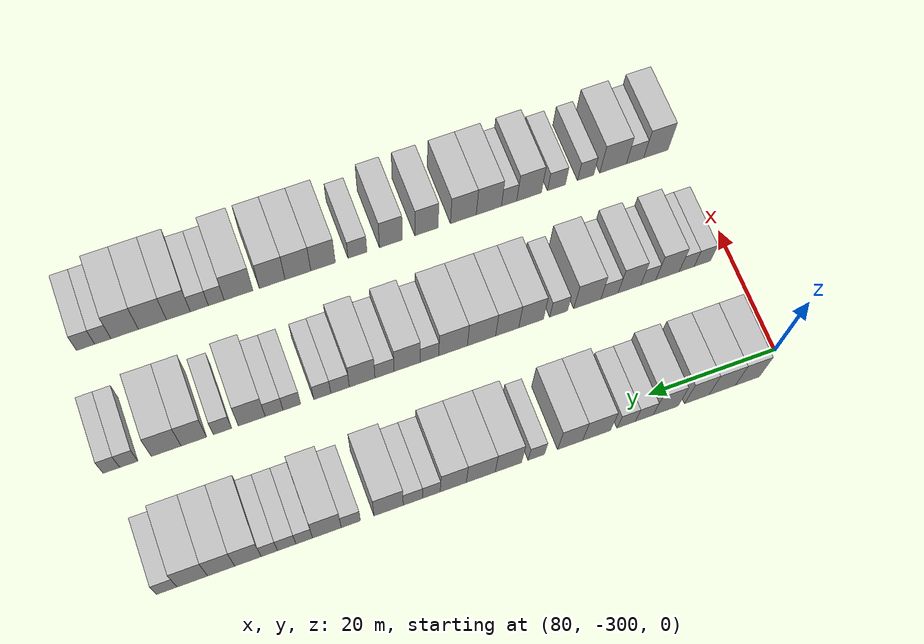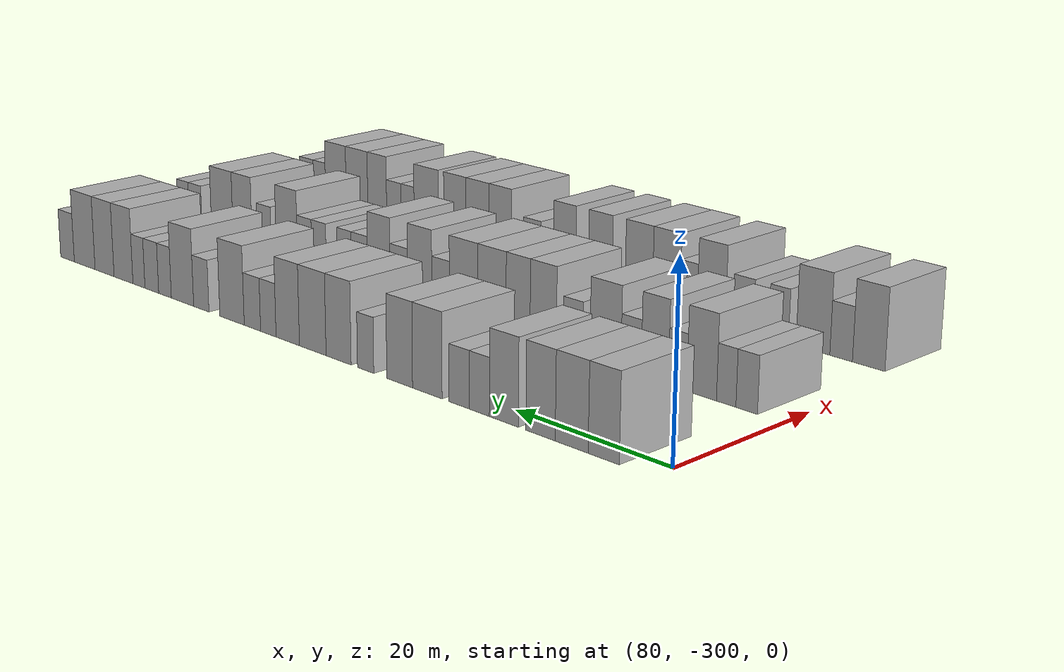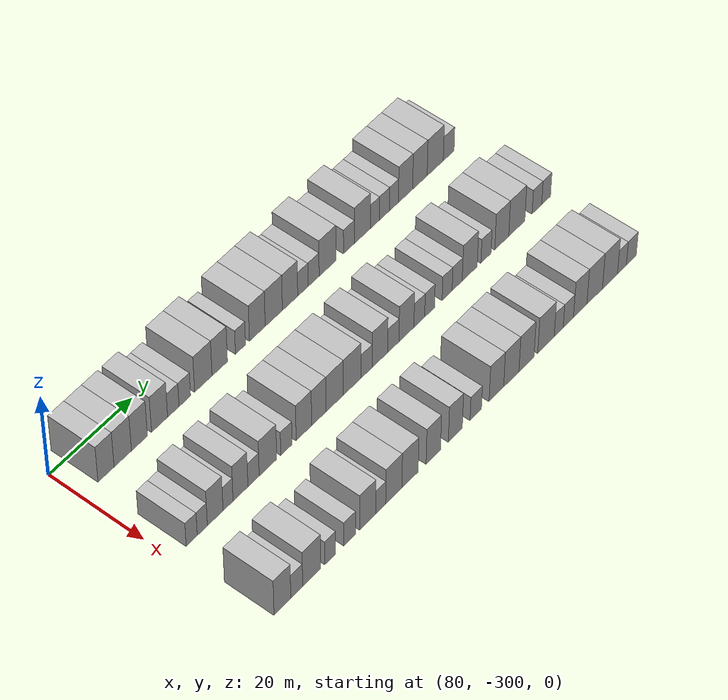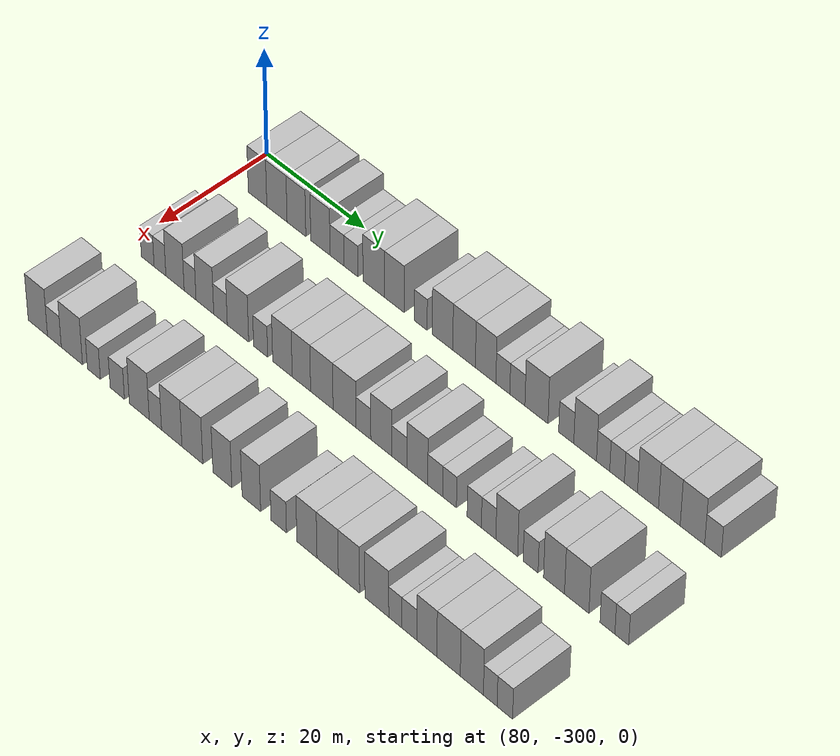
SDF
<sdf version="1.6">
 <world name="default">
  <model name="building_510">
   <static>1</static>
   <pose>82.0000 -294.2352 0 0.000000 0.000000 0.000000</pose>
   <link name="link">
    <pose>0 0 4.50 0 0 0</pose>
    <collision name="collision"><geometry><box><size>10.0000 3.8340 9.0000</size></box></geometry></collision>
    <visual name="visual">
     <cast_shadows>0</cast_shadows>
     <geometry><box><size>10.0000 3.8340 9.0000</size></box></geometry>
     <material>
      <script>
       <uri>model://HANNAS_wall/materials/scripts</uri>
       <uri>model://HANNAS_wall/materials/textures</uri>
       <name>vrc/HANNAS_wall</name>
      </script>
     </material>
    </visual>
   </link>
  </model>
  <model name="building_511">
   <static>1</static>
   <pose>82.0000 -290.2316 0 0.000000 0.000000 0.000000</pose>
   <link name="link">
    <pose>0 0 4.50 0 0 0</pose>
    <collision name="collision"><geometry><box><size>10.0000 4.1733 9.0000</size></box></geometry></collision>
    <visual name="visual">
     <cast_shadows>0</cast_shadows>
     <geometry><box><size>10.0000 4.1733 9.0000</size></box></geometry>
     <material>
      <script>
       <uri>model://HANNAS_wall/materials/scripts</uri>
       <uri>model://HANNAS_wall/materials/textures</uri>
       <name>vrc/HANNAS_wall</name>
      </script>
     </material>
    </visual>
   </link>
  </model>
  <model name="building_512">
   <static>1</static>
   <pose>82.0000 -286.2272 0 0.000000 0.000000 0.000000</pose>
   <link name="link">
    <pose>0 0 4.50 0 0 0</pose>
    <collision name="collision"><geometry><box><size>10.0000 3.8354 9.0000</size></box></geometry></collision>
    <visual name="visual">
     <cast_shadows>0</cast_shadows>
     <geometry><box><size>10.0000 3.8354 9.0000</size></box></geometry>
     <material>
      <script>
       <uri>model://HANNAS_wall/materials/scripts</uri>
       <uri>model://HANNAS_wall/materials/textures</uri>
       <name>vrc/HANNAS_wall</name>
      </script>
     </material>
    </visual>
   </link>
  </model>
  <model name="building_513">
   <static>1</static>
   <pose>82.0000 -281.3479 0 0.000000 0.000000 0.000000</pose>
   <link name="link">
    <pose>0 0 4.50 0 0 0</pose>
    <collision name="collision"><geometry><box><size>10.0000 3.9232 9.0000</size></box></geometry></collision>
    <visual name="visual">
     <cast_shadows>0</cast_shadows>
     <geometry><box><size>10.0000 3.9232 9.0000</size></box></geometry>
     <material>
      <script>
       <uri>model://HANNAS_wall/materials/scripts</uri>
       <uri>model://HANNAS_wall/materials/textures</uri>
       <name>vrc/HANNAS_wall</name>
      </script>
     </material>
    </visual>
   </link>
  </model>
  <model name="building_514">
   <static>1</static>
   <pose>82.0000 -277.9864 0 0.000000 0.000000 0.000000</pose>
   <link name="link">
    <pose>0 0 3.00 0 0 0</pose>
    <collision name="collision"><geometry><box><size>10.0000 2.7998 6.0000</size></box></geometry></collision>
    <visual name="visual">
     <cast_shadows>0</cast_shadows>
     <geometry><box><size>10.0000 2.7998 6.0000</size></box></geometry>
     <material>
      <script>
       <uri>model://HANNAS_wall/materials/scripts</uri>
       <uri>model://HANNAS_wall/materials/textures</uri>
       <name>vrc/HANNAS_wall</name>
      </script>
     </material>
    </visual>
   </link>
  </model>
  <model name="building_515">
   <static>1</static>
   <pose>82.0000 -275.1709 0 0.000000 0.000000 0.000000</pose>
   <link name="link">
    <pose>0 0 3.00 0 0 0</pose>
    <collision name="collision"><geometry><box><size>10.0000 2.8311 6.0000</size></box></geometry></collision>
    <visual name="visual">
     <cast_shadows>0</cast_shadows>
     <geometry><box><size>10.0000 2.8311 6.0000</size></box></geometry>
     <material>
      <script>
       <uri>model://HANNAS_wall/materials/scripts</uri>
       <uri>model://HANNAS_wall/materials/textures</uri>
       <name>vrc/HANNAS_wall</name>
      </script>
     </material>
    </visual>
   </link>
  </model>
  <model name="building_516">
   <static>1</static>
   <pose>82.0000 -270.5959 0 0.000000 0.000000 0.000000</pose>
   <link name="link">
    <pose>0 0 4.50 0 0 0</pose>
    <collision name="collision"><geometry><box><size>10.0000 4.3189 9.0000</size></box></geometry></collision>
    <visual name="visual">
     <cast_shadows>0</cast_shadows>
     <geometry><box><size>10.0000 4.3189 9.0000</size></box></geometry>
     <material>
      <script>
       <uri>model://HANNAS_wall/materials/scripts</uri>
       <uri>model://HANNAS_wall/materials/textures</uri>
       <name>vrc/HANNAS_wall</name>
      </script>
     </material>
    </visual>
   </link>
  </model>
  <model name="building_517">
   <static>1</static>
   <pose>82.0000 -266.5092 0 0.000000 0.000000 0.000000</pose>
   <link name="link">
    <pose>0 0 4.50 0 0 0</pose>
    <collision name="collision"><geometry><box><size>10.0000 3.8545 9.0000</size></box></geometry></collision>
    <visual name="visual">
     <cast_shadows>0</cast_shadows>
     <geometry><box><size>10.0000 3.8545 9.0000</size></box></geometry>
     <material>
      <script>
       <uri>model://HANNAS_wall/materials/scripts</uri>
       <uri>model://HANNAS_wall/materials/textures</uri>
       <name>vrc/HANNAS_wall</name>
      </script>
     </material>
    </visual>
   </link>
  </model>
  <model name="building_518">
   <static>1</static>
   <pose>82.0000 -261.3181 0 0.000000 0.000000 0.000000</pose>
   <link name="link">
    <pose>0 0 3.00 0 0 0</pose>
    <collision name="collision"><geometry><box><size>10.0000 2.5278 6.0000</size></box></geometry></collision>
    <visual name="visual">
     <cast_shadows>0</cast_shadows>
     <geometry><box><size>10.0000 2.5278 6.0000</size></box></geometry>
     <material>
      <script>
       <uri>model://HANNAS_wall/materials/scripts</uri>
       <uri>model://HANNAS_wall/materials/textures</uri>
       <name>vrc/HANNAS_wall</name>
      </script>
     </material>
    </visual>
   </link>
  </model>
  <model name="building_519">
   <static>1</static>
   <pose>82.0000 -257.0502 0 0.000000 0.000000 0.000000</pose>
   <link name="link">
    <pose>0 0 4.50 0 0 0</pose>
    <collision name="collision"><geometry><box><size>10.0000 4.0079 9.0000</size></box></geometry></collision>
    <visual name="visual">
     <cast_shadows>0</cast_shadows>
     <geometry><box><size>10.0000 4.0079 9.0000</size></box></geometry>
     <material>
      <script>
       <uri>model://HANNAS_wall/materials/scripts</uri>
       <uri>model://HANNAS_wall/materials/textures</uri>
       <name>vrc/HANNAS_wall</name>
      </script>
     </material>
    </visual>
   </link>
  </model>
  <model name="building_520">
   <static>1</static>
   <pose>82.0000 -252.8578 0 0.000000 0.000000 0.000000</pose>
   <link name="link">
    <pose>0 0 4.50 0 0 0</pose>
    <collision name="collision"><geometry><box><size>10.0000 4.3769 9.0000</size></box></geometry></collision>
    <visual name="visual">
     <cast_shadows>0</cast_shadows>
     <geometry><box><size>10.0000 4.3769 9.0000</size></box></geometry>
     <material>
      <script>
       <uri>model://HANNAS_wall/materials/scripts</uri>
       <uri>model://HANNAS_wall/materials/textures</uri>
       <name>vrc/HANNAS_wall</name>
      </script>
     </material>
    </visual>
   </link>
  </model>
  <model name="building_521">
   <static>1</static>
   <pose>82.0000 -248.6945 0 0.000000 0.000000 0.000000</pose>
   <link name="link">
    <pose>0 0 4.50 0 0 0</pose>
    <collision name="collision"><geometry><box><size>10.0000 3.9498 9.0000</size></box></geometry></collision>
    <visual name="visual">
     <cast_shadows>0</cast_shadows>
     <geometry><box><size>10.0000 3.9498 9.0000</size></box></geometry>
     <material>
      <script>
       <uri>model://HANNAS_wall/materials/scripts</uri>
       <uri>model://HANNAS_wall/materials/textures</uri>
       <name>vrc/HANNAS_wall</name>
      </script>
     </material>
    </visual>
   </link>
  </model>
  <model name="building_522">
   <static>1</static>
   <pose>82.0000 -245.3860 0 0.000000 0.000000 0.000000</pose>
   <link name="link">
    <pose>0 0 3.00 0 0 0</pose>
    <collision name="collision"><geometry><box><size>10.0000 2.6672 6.0000</size></box></geometry></collision>
    <visual name="visual">
     <cast_shadows>0</cast_shadows>
     <geometry><box><size>10.0000 2.6672 6.0000</size></box></geometry>
     <material>
      <script>
       <uri>model://HANNAS_wall/materials/scripts</uri>
       <uri>model://HANNAS_wall/materials/textures</uri>
       <name>vrc/HANNAS_wall</name>
      </script>
     </material>
    </visual>
   </link>
  </model>
  <model name="building_523">
   <static>1</static>
   <pose>82.0000 -242.6149 0 0.000000 0.000000 0.000000</pose>
   <link name="link">
    <pose>0 0 3.00 0 0 0</pose>
    <collision name="collision"><geometry><box><size>10.0000 2.8750 6.0000</size></box></geometry></collision>
    <visual name="visual">
     <cast_shadows>0</cast_shadows>
     <geometry><box><size>10.0000 2.8750 6.0000</size></box></geometry>
     <material>
      <script>
       <uri>model://HANNAS_wall/materials/scripts</uri>
       <uri>model://HANNAS_wall/materials/textures</uri>
       <name>vrc/HANNAS_wall</name>
      </script>
     </material>
    </visual>
   </link>
  </model>
  <model name="building_524">
   <static>1</static>
   <pose>82.0000 -238.9910 0 0.000000 0.000000 0.000000</pose>
   <link name="link">
    <pose>0 0 4.50 0 0 0</pose>
    <collision name="collision"><geometry><box><size>10.0000 4.3729 9.0000</size></box></geometry></collision>
    <visual name="visual">
     <cast_shadows>0</cast_shadows>
     <geometry><box><size>10.0000 4.3729 9.0000</size></box></geometry>
     <material>
      <script>
       <uri>model://HANNAS_wall/materials/scripts</uri>
       <uri>model://HANNAS_wall/materials/textures</uri>
       <name>vrc/HANNAS_wall</name>
      </script>
     </material>
    </visual>
   </link>
  </model>
  <model name="building_525">
   <static>1</static>
   <pose>82.0000 -233.3838 0 0.000000 0.000000 0.000000</pose>
   <link name="link">
    <pose>0 0 3.00 0 0 0</pose>
    <collision name="collision"><geometry><box><size>10.0000 2.8414 6.0000</size></box></geometry></collision>
    <visual name="visual">
     <cast_shadows>0</cast_shadows>
     <geometry><box><size>10.0000 2.8414 6.0000</size></box></geometry>
     <material>
      <script>
       <uri>model://HANNAS_wall/materials/scripts</uri>
       <uri>model://HANNAS_wall/materials/textures</uri>
       <name>vrc/HANNAS_wall</name>
      </script>
     </material>
    </visual>
   </link>
  </model>
  <model name="building_526">
   <static>1</static>
   <pose>82.0000 -229.8430 0 0.000000 0.000000 0.000000</pose>
   <link name="link">
    <pose>0 0 4.50 0 0 0</pose>
    <collision name="collision"><geometry><box><size>10.0000 4.2402 9.0000</size></box></geometry></collision>
    <visual name="visual">
     <cast_shadows>0</cast_shadows>
     <geometry><box><size>10.0000 4.2402 9.0000</size></box></geometry>
     <material>
      <script>
       <uri>model://HANNAS_wall/materials/scripts</uri>
       <uri>model://HANNAS_wall/materials/textures</uri>
       <name>vrc/HANNAS_wall</name>
      </script>
     </material>
    </visual>
   </link>
  </model>
  <model name="building_527">
   <static>1</static>
   <pose>82.0000 -226.4991 0 0.000000 0.000000 0.000000</pose>
   <link name="link">
    <pose>0 0 3.00 0 0 0</pose>
    <collision name="collision"><geometry><box><size>10.0000 2.4478 6.0000</size></box></geometry></collision>
    <visual name="visual">
     <cast_shadows>0</cast_shadows>
     <geometry><box><size>10.0000 2.4478 6.0000</size></box></geometry>
     <material>
      <script>
       <uri>model://HANNAS_wall/materials/scripts</uri>
       <uri>model://HANNAS_wall/materials/textures</uri>
       <name>vrc/HANNAS_wall</name>
      </script>
     </material>
    </visual>
   </link>
  </model>
  <model name="building_528">
   <static>1</static>
   <pose>82.0000 -223.9237 0 0.000000 0.000000 0.000000</pose>
   <link name="link">
    <pose>0 0 3.00 0 0 0</pose>
    <collision name="collision"><geometry><box><size>10.0000 2.7030 6.0000</size></box></geometry></collision>
    <visual name="visual">
     <cast_shadows>0</cast_shadows>
     <geometry><box><size>10.0000 2.7030 6.0000</size></box></geometry>
     <material>
      <script>
       <uri>model://HANNAS_wall/materials/scripts</uri>
       <uri>model://HANNAS_wall/materials/textures</uri>
       <name>vrc/HANNAS_wall</name>
      </script>
     </material>
    </visual>
   </link>
  </model>
  <model name="building_529">
   <static>1</static>
   <pose>82.0000 -221.3714 0 0.000000 0.000000 0.000000</pose>
   <link name="link">
    <pose>0 0 3.00 0 0 0</pose>
    <collision name="collision"><geometry><box><size>10.0000 2.4015 6.0000</size></box></geometry></collision>
    <visual name="visual">
     <cast_shadows>0</cast_shadows>
     <geometry><box><size>10.0000 2.4015 6.0000</size></box></geometry>
     <material>
      <script>
       <uri>model://HANNAS_wall/materials/scripts</uri>
       <uri>model://HANNAS_wall/materials/textures</uri>
       <name>vrc/HANNAS_wall</name>
      </script>
     </material>
    </visual>
   </link>
  </model>
  <model name="building_530">
   <static>1</static>
   <pose>82.0000 -218.2492 0 0.000000 0.000000 0.000000</pose>
   <link name="link">
    <pose>0 0 4.50 0 0 0</pose>
    <collision name="collision"><geometry><box><size>10.0000 3.8430 9.0000</size></box></geometry></collision>
    <visual name="visual">
     <cast_shadows>0</cast_shadows>
     <geometry><box><size>10.0000 3.8430 9.0000</size></box></geometry>
     <material>
      <script>
       <uri>model://HANNAS_wall/materials/scripts</uri>
       <uri>model://HANNAS_wall/materials/textures</uri>
       <name>vrc/HANNAS_wall</name>
      </script>
     </material>
    </visual>
   </link>
  </model>
  <model name="building_531">
   <static>1</static>
   <pose>82.0000 -214.3523 0 0.000000 0.000000 0.000000</pose>
   <link name="link">
    <pose>0 0 4.50 0 0 0</pose>
    <collision name="collision"><geometry><box><size>10.0000 3.9508 9.0000</size></box></geometry></collision>
    <visual name="visual">
     <cast_shadows>0</cast_shadows>
     <geometry><box><size>10.0000 3.9508 9.0000</size></box></geometry>
     <material>
      <script>
       <uri>model://HANNAS_wall/materials/scripts</uri>
       <uri>model://HANNAS_wall/materials/textures</uri>
       <name>vrc/HANNAS_wall</name>
      </script>
     </material>
    </visual>
   </link>
  </model>
  <model name="building_532">
   <static>1</static>
   <pose>82.0000 -210.1659 0 0.000000 0.000000 0.000000</pose>
   <link name="link">
    <pose>0 0 4.50 0 0 0</pose>
    <collision name="collision"><geometry><box><size>10.0000 4.4219 9.0000</size></box></geometry></collision>
    <visual name="visual">
     <cast_shadows>0</cast_shadows>
     <geometry><box><size>10.0000 4.4219 9.0000</size></box></geometry>
     <material>
      <script>
       <uri>model://HANNAS_wall/materials/scripts</uri>
       <uri>model://HANNAS_wall/materials/textures</uri>
       <name>vrc/HANNAS_wall</name>
      </script>
     </material>
    </visual>
   </link>
  </model>
  <model name="building_533">
   <static>1</static>
   <pose>82.0000 -206.4768 0 0.000000 0.000000 0.000000</pose>
   <link name="link">
    <pose>0 0 3.00 0 0 0</pose>
    <collision name="collision"><geometry><box><size>10.0000 2.9564 6.0000</size></box></geometry></collision>
    <visual name="visual">
     <cast_shadows>0</cast_shadows>
     <geometry><box><size>10.0000 2.9564 6.0000</size></box></geometry>
     <material>
      <script>
       <uri>model://HANNAS_wall/materials/scripts</uri>
       <uri>model://HANNAS_wall/materials/textures</uri>
       <name>vrc/HANNAS_wall</name>
      </script>
     </material>
    </visual>
   </link>
  </model>
  <model name="building_691">
   <static>1</static>
   <pose>101.0000 -295.5065 0 0.000000 0.000000 0.000000</pose>
   <link name="link">
    <pose>0 0 3.00 0 0 0</pose>
    <collision name="collision"><geometry><box><size>10.0000 2.6492 6.0000</size></box></geometry></collision>
    <visual name="visual">
     <cast_shadows>0</cast_shadows>
     <geometry><box><size>10.0000 2.6492 6.0000</size></box></geometry>
     <material>
      <script>
       <uri>model://HANNAS_wall/materials/scripts</uri>
       <uri>model://HANNAS_wall/materials/textures</uri>
       <name>vrc/HANNAS_wall</name>
      </script>
     </material>
    </visual>
   </link>
  </model>
  <model name="building_692">
   <static>1</static>
   <pose>101.0000 -292.9646 0 0.000000 0.000000 0.000000</pose>
   <link name="link">
    <pose>0 0 3.00 0 0 0</pose>
    <collision name="collision"><geometry><box><size>10.0000 2.4347 6.0000</size></box></geometry></collision>
    <visual name="visual">
     <cast_shadows>0</cast_shadows>
     <geometry><box><size>10.0000 2.4347 6.0000</size></box></geometry>
     <material>
      <script>
       <uri>model://HANNAS_wall/materials/scripts</uri>
       <uri>model://HANNAS_wall/materials/textures</uri>
       <name>vrc/HANNAS_wall</name>
      </script>
     </material>
    </visual>
   </link>
  </model>
  <model name="building_693">
   <static>1</static>
   <pose>101.0000 -289.8550 0 0.000000 0.000000 0.000000</pose>
   <link name="link">
    <pose>0 0 4.50 0 0 0</pose>
    <collision name="collision"><geometry><box><size>10.0000 3.7845 9.0000</size></box></geometry></collision>
    <visual name="visual">
     <cast_shadows>0</cast_shadows>
     <geometry><box><size>10.0000 3.7845 9.0000</size></box></geometry>
     <material>
      <script>
       <uri>model://HANNAS_wall/materials/scripts</uri>
       <uri>model://HANNAS_wall/materials/textures</uri>
       <name>vrc/HANNAS_wall</name>
      </script>
     </material>
    </visual>
   </link>
  </model>
  <model name="building_694">
   <static>1</static>
   <pose>101.0000 -286.7466 0 0.000000 0.000000 0.000000</pose>
   <link name="link">
    <pose>0 0 3.00 0 0 0</pose>
    <collision name="collision"><geometry><box><size>10.0000 2.4322 6.0000</size></box></geometry></collision>
    <visual name="visual">
     <cast_shadows>0</cast_shadows>
     <geometry><box><size>10.0000 2.4322 6.0000</size></box></geometry>
     <material>
      <script>
       <uri>model://HANNAS_wall/materials/scripts</uri>
       <uri>model://HANNAS_wall/materials/textures</uri>
       <name>vrc/HANNAS_wall</name>
      </script>
     </material>
    </visual>
   </link>
  </model>
  <model name="building_695">
   <static>1</static>
   <pose>101.0000 -283.7187 0 0.000000 0.000000 0.000000</pose>
   <link name="link">
    <pose>0 0 4.50 0 0 0</pose>
    <collision name="collision"><geometry><box><size>10.0000 3.6236 9.0000</size></box></geometry></collision>
    <visual name="visual">
     <cast_shadows>0</cast_shadows>
     <geometry><box><size>10.0000 3.6236 9.0000</size></box></geometry>
     <material>
      <script>
       <uri>model://HANNAS_wall/materials/scripts</uri>
       <uri>model://HANNAS_wall/materials/textures</uri>
       <name>vrc/HANNAS_wall</name>
      </script>
     </material>
    </visual>
   </link>
  </model>
  <model name="building_696">
   <static>1</static>
   <pose>101.0000 -280.5299 0 0.000000 0.000000 0.000000</pose>
   <link name="link">
    <pose>0 0 3.00 0 0 0</pose>
    <collision name="collision"><geometry><box><size>10.0000 2.7540 6.0000</size></box></geometry></collision>
    <visual name="visual">
     <cast_shadows>0</cast_shadows>
     <geometry><box><size>10.0000 2.7540 6.0000</size></box></geometry>
     <material>
      <script>
       <uri>model://HANNAS_wall/materials/scripts</uri>
       <uri>model://HANNAS_wall/materials/textures</uri>
       <name>vrc/HANNAS_wall</name>
      </script>
     </material>
    </visual>
   </link>
  </model>
  <model name="building_697">
   <static>1</static>
   <pose>101.0000 -276.9914 0 0.000000 0.000000 0.000000</pose>
   <link name="link">
    <pose>0 0 4.50 0 0 0</pose>
    <collision name="collision"><geometry><box><size>10.0000 4.3229 9.0000</size></box></geometry></collision>
    <visual name="visual">
     <cast_shadows>0</cast_shadows>
     <geometry><box><size>10.0000 4.3229 9.0000</size></box></geometry>
     <material>
      <script>
       <uri>model://HANNAS_wall/materials/scripts</uri>
       <uri>model://HANNAS_wall/materials/textures</uri>
       <name>vrc/HANNAS_wall</name>
      </script>
     </material>
    </visual>
   </link>
  </model>
  <model name="building_698">
   <static>1</static>
   <pose>101.0000 -272.4212 0 0.000000 0.000000 0.000000</pose>
   <link name="link">
    <pose>0 0 3.00 0 0 0</pose>
    <collision name="collision"><geometry><box><size>10.0000 2.8174 6.0000</size></box></geometry></collision>
    <visual name="visual">
     <cast_shadows>0</cast_shadows>
     <geometry><box><size>10.0000 2.8174 6.0000</size></box></geometry>
     <material>
      <script>
       <uri>model://HANNAS_wall/materials/scripts</uri>
       <uri>model://HANNAS_wall/materials/textures</uri>
       <name>vrc/HANNAS_wall</name>
      </script>
     </material>
    </visual>
   </link>
  </model>
  <model name="building_699">
   <static>1</static>
   <pose>101.0000 -268.0693 0 0.000000 0.000000 0.000000</pose>
   <link name="link">
    <pose>0 0 4.50 0 0 0</pose>
    <collision name="collision"><geometry><box><size>10.0000 3.8864 9.0000</size></box></geometry></collision>
    <visual name="visual">
     <cast_shadows>0</cast_shadows>
     <geometry><box><size>10.0000 3.8864 9.0000</size></box></geometry>
     <material>
      <script>
       <uri>model://HANNAS_wall/materials/scripts</uri>
       <uri>model://HANNAS_wall/materials/textures</uri>
       <name>vrc/HANNAS_wall</name>
      </script>
     </material>
    </visual>
   </link>
  </model>
  <model name="building_700">
   <static>1</static>
   <pose>101.0000 -264.3089 0 0.000000 0.000000 0.000000</pose>
   <link name="link">
    <pose>0 0 4.50 0 0 0</pose>
    <collision name="collision"><geometry><box><size>10.0000 3.6345 9.0000</size></box></geometry></collision>
    <visual name="visual">
     <cast_shadows>0</cast_shadows>
     <geometry><box><size>10.0000 3.6345 9.0000</size></box></geometry>
     <material>
      <script>
       <uri>model://HANNAS_wall/materials/scripts</uri>
       <uri>model://HANNAS_wall/materials/textures</uri>
       <name>vrc/HANNAS_wall</name>
      </script>
     </material>
    </visual>
   </link>
  </model>
  <model name="building_701">
   <static>1</static>
   <pose>101.0000 -260.2811 0 0.000000 0.000000 0.000000</pose>
   <link name="link">
    <pose>0 0 4.50 0 0 0</pose>
    <collision name="collision"><geometry><box><size>10.0000 4.4210 9.0000</size></box></geometry></collision>
    <visual name="visual">
     <cast_shadows>0</cast_shadows>
     <geometry><box><size>10.0000 4.4210 9.0000</size></box></geometry>
     <material>
      <script>
       <uri>model://HANNAS_wall/materials/scripts</uri>
       <uri>model://HANNAS_wall/materials/textures</uri>
       <name>vrc/HANNAS_wall</name>
      </script>
     </material>
    </visual>
   </link>
  </model>
  <model name="building_702">
   <static>1</static>
   <pose>101.0000 -255.8281 0 0.000000 0.000000 0.000000</pose>
   <link name="link">
    <pose>0 0 4.50 0 0 0</pose>
    <collision name="collision"><geometry><box><size>10.0000 4.4849 9.0000</size></box></geometry></collision>
    <visual name="visual">
     <cast_shadows>0</cast_shadows>
     <geometry><box><size>10.0000 4.4849 9.0000</size></box></geometry>
     <material>
      <script>
       <uri>model://HANNAS_wall/materials/scripts</uri>
       <uri>model://HANNAS_wall/materials/textures</uri>
       <name>vrc/HANNAS_wall</name>
      </script>
     </material>
    </visual>
   </link>
  </model>
  <model name="building_703">
   <static>1</static>
   <pose>101.0000 -252.1561 0 0.000000 0.000000 0.000000</pose>
   <link name="link">
    <pose>0 0 3.00 0 0 0</pose>
    <collision name="collision"><geometry><box><size>10.0000 2.8591 6.0000</size></box></geometry></collision>
    <visual name="visual">
     <cast_shadows>0</cast_shadows>
     <geometry><box><size>10.0000 2.8591 6.0000</size></box></geometry>
     <material>
      <script>
       <uri>model://HANNAS_wall/materials/scripts</uri>
       <uri>model://HANNAS_wall/materials/textures</uri>
       <name>vrc/HANNAS_wall</name>
      </script>
     </material>
    </visual>
   </link>
  </model>
  <model name="building_704">
   <static>1</static>
   <pose>101.0000 -248.7094 0 0.000000 0.000000 0.000000</pose>
   <link name="link">
    <pose>0 0 4.50 0 0 0</pose>
    <collision name="collision"><geometry><box><size>10.0000 4.0343 9.0000</size></box></geometry></collision>
    <visual name="visual">
     <cast_shadows>0</cast_shadows>
     <geometry><box><size>10.0000 4.0343 9.0000</size></box></geometry>
     <material>
      <script>
       <uri>model://HANNAS_wall/materials/scripts</uri>
       <uri>model://HANNAS_wall/materials/textures</uri>
       <name>vrc/HANNAS_wall</name>
      </script>
     </material>
    </visual>
   </link>
  </model>
  <model name="building_705">
   <static>1</static>
   <pose>101.0000 -245.2243 0 0.000000 0.000000 0.000000</pose>
   <link name="link">
    <pose>0 0 3.00 0 0 0</pose>
    <collision name="collision"><geometry><box><size>10.0000 2.9359 6.0000</size></box></geometry></collision>
    <visual name="visual">
     <cast_shadows>0</cast_shadows>
     <geometry><box><size>10.0000 2.9359 6.0000</size></box></geometry>
     <material>
      <script>
       <uri>model://HANNAS_wall/materials/scripts</uri>
       <uri>model://HANNAS_wall/materials/textures</uri>
       <name>vrc/HANNAS_wall</name>
      </script>
     </material>
    </visual>
   </link>
  </model>
  <model name="building_706">
   <static>1</static>
   <pose>101.0000 -241.7904 0 0.000000 0.000000 0.000000</pose>
   <link name="link">
    <pose>0 0 4.50 0 0 0</pose>
    <collision name="collision"><geometry><box><size>10.0000 3.9318 9.0000</size></box></geometry></collision>
    <visual name="visual">
     <cast_shadows>0</cast_shadows>
     <geometry><box><size>10.0000 3.9318 9.0000</size></box></geometry>
     <material>
      <script>
       <uri>model://HANNAS_wall/materials/scripts</uri>
       <uri>model://HANNAS_wall/materials/textures</uri>
       <name>vrc/HANNAS_wall</name>
      </script>
     </material>
    </visual>
   </link>
  </model>
  <model name="building_707">
   <static>1</static>
   <pose>101.0000 -238.4091 0 0.000000 0.000000 0.000000</pose>
   <link name="link">
    <pose>0 0 3.00 0 0 0</pose>
    <collision name="collision"><geometry><box><size>10.0000 2.8309 6.0000</size></box></geometry></collision>
    <visual name="visual">
     <cast_shadows>0</cast_shadows>
     <geometry><box><size>10.0000 2.8309 6.0000</size></box></geometry>
     <material>
      <script>
       <uri>model://HANNAS_wall/materials/scripts</uri>
       <uri>model://HANNAS_wall/materials/textures</uri>
       <name>vrc/HANNAS_wall</name>
      </script>
     </material>
    </visual>
   </link>
  </model>
  <model name="building_708">
   <static>1</static>
   <pose>101.0000 -235.6914 0 0.000000 0.000000 0.000000</pose>
   <link name="link">
    <pose>0 0 3.00 0 0 0</pose>
    <collision name="collision"><geometry><box><size>10.0000 2.6045 6.0000</size></box></geometry></collision>
    <visual name="visual">
     <cast_shadows>0</cast_shadows>
     <geometry><box><size>10.0000 2.6045 6.0000</size></box></geometry>
     <material>
      <script>
       <uri>model://HANNAS_wall/materials/scripts</uri>
       <uri>model://HANNAS_wall/materials/textures</uri>
       <name>vrc/HANNAS_wall</name>
      </script>
     </material>
    </visual>
   </link>
  </model>
  <model name="building_709">
   <static>1</static>
   <pose>101.0000 -231.0523 0 0.000000 0.000000 0.000000</pose>
   <link name="link">
    <pose>0 0 3.00 0 0 0</pose>
    <collision name="collision"><geometry><box><size>10.0000 2.6736 6.0000</size></box></geometry></collision>
    <visual name="visual">
     <cast_shadows>0</cast_shadows>
     <geometry><box><size>10.0000 2.6736 6.0000</size></box></geometry>
     <material>
      <script>
       <uri>model://HANNAS_wall/materials/scripts</uri>
       <uri>model://HANNAS_wall/materials/textures</uri>
       <name>vrc/HANNAS_wall</name>
      </script>
     </material>
    </visual>
   </link>
  </model>
  <model name="building_710">
   <static>1</static>
   <pose>101.0000 -228.3657 0 0.000000 0.000000 0.000000</pose>
   <link name="link">
    <pose>0 0 3.00 0 0 0</pose>
    <collision name="collision"><geometry><box><size>10.0000 2.6997 6.0000</size></box></geometry></collision>
    <visual name="visual">
     <cast_shadows>0</cast_shadows>
     <geometry><box><size>10.0000 2.6997 6.0000</size></box></geometry>
     <material>
      <script>
       <uri>model://HANNAS_wall/materials/scripts</uri>
       <uri>model://HANNAS_wall/materials/textures</uri>
       <name>vrc/HANNAS_wall</name>
      </script>
     </material>
    </visual>
   </link>
  </model>
  <model name="building_711">
   <static>1</static>
   <pose>101.0000 -224.9940 0 0.000000 0.000000 0.000000</pose>
   <link name="link">
    <pose>0 0 4.50 0 0 0</pose>
    <collision name="collision"><geometry><box><size>10.0000 4.0435 9.0000</size></box></geometry></collision>
    <visual name="visual">
     <cast_shadows>0</cast_shadows>
     <geometry><box><size>10.0000 4.0435 9.0000</size></box></geometry>
     <material>
      <script>
       <uri>model://HANNAS_wall/materials/scripts</uri>
       <uri>model://HANNAS_wall/materials/textures</uri>
       <name>vrc/HANNAS_wall</name>
      </script>
     </material>
    </visual>
   </link>
  </model>
  <model name="building_712">
   <static>1</static>
   <pose>101.0000 -220.5979 0 0.000000 0.000000 0.000000</pose>
   <link name="link">
    <pose>0 0 3.00 0 0 0</pose>
    <collision name="collision"><geometry><box><size>10.0000 2.7487 6.0000</size></box></geometry></collision>
    <visual name="visual">
     <cast_shadows>0</cast_shadows>
     <geometry><box><size>10.0000 2.7487 6.0000</size></box></geometry>
     <material>
      <script>
       <uri>model://HANNAS_wall/materials/scripts</uri>
       <uri>model://HANNAS_wall/materials/textures</uri>
       <name>vrc/HANNAS_wall</name>
      </script>
     </material>
    </visual>
   </link>
  </model>
  <model name="building_713">
   <static>1</static>
   <pose>101.0000 -216.3107 0 0.000000 0.000000 0.000000</pose>
   <link name="link">
    <pose>0 0 4.50 0 0 0</pose>
    <collision name="collision"><geometry><box><size>10.0000 3.8257 9.0000</size></box></geometry></collision>
    <visual name="visual">
     <cast_shadows>0</cast_shadows>
     <geometry><box><size>10.0000 3.8257 9.0000</size></box></geometry>
     <material>
      <script>
       <uri>model://HANNAS_wall/materials/scripts</uri>
       <uri>model://HANNAS_wall/materials/textures</uri>
       <name>vrc/HANNAS_wall</name>
      </script>
     </material>
    </visual>
   </link>
  </model>
  <model name="building_714">
   <static>1</static>
   <pose>101.0000 -212.1875 0 0.000000 0.000000 0.000000</pose>
   <link name="link">
    <pose>0 0 4.50 0 0 0</pose>
    <collision name="collision"><geometry><box><size>10.0000 4.4207 9.0000</size></box></geometry></collision>
    <visual name="visual">
     <cast_shadows>0</cast_shadows>
     <geometry><box><size>10.0000 4.4207 9.0000</size></box></geometry>
     <material>
      <script>
       <uri>model://HANNAS_wall/materials/scripts</uri>
       <uri>model://HANNAS_wall/materials/textures</uri>
       <name>vrc/HANNAS_wall</name>
      </script>
     </material>
    </visual>
   </link>
  </model>
  <model name="building_715">
   <static>1</static>
   <pose>101.0000 -206.6429 0 0.000000 0.000000 0.000000</pose>
   <link name="link">
    <pose>0 0 3.00 0 0 0</pose>
    <collision name="collision"><geometry><box><size>10.0000 2.6685 6.0000</size></box></geometry></collision>
    <visual name="visual">
     <cast_shadows>0</cast_shadows>
     <geometry><box><size>10.0000 2.6685 6.0000</size></box></geometry>
     <material>
      <script>
       <uri>model://HANNAS_wall/materials/scripts</uri>
       <uri>model://HANNAS_wall/materials/textures</uri>
       <name>vrc/HANNAS_wall</name>
      </script>
     </material>
    </visual>
   </link>
  </model>
  <model name="building_716">
   <static>1</static>
   <pose>101.0000 -204.0789 0 0.000000 0.000000 0.000000</pose>
   <link name="link">
    <pose>0 0 3.00 0 0 0</pose>
    <collision name="collision"><geometry><box><size>10.0000 2.4596 6.0000</size></box></geometry></collision>
    <visual name="visual">
     <cast_shadows>0</cast_shadows>
     <geometry><box><size>10.0000 2.4596 6.0000</size></box></geometry>
     <material>
      <script>
       <uri>model://HANNAS_wall/materials/scripts</uri>
       <uri>model://HANNAS_wall/materials/textures</uri>
       <name>vrc/HANNAS_wall</name>
      </script>
     </material>
    </visual>
   </link>
  </model>
  <model name="building_861">
   <static>1</static>
   <pose>120.0000 -296.1678 0 0.000000 0.000000 0.000000</pose>
   <link name="link">
    <pose>0 0 4.50 0 0 0</pose>
    <collision name="collision"><geometry><box><size>10.0000 4.0360 9.0000</size></box></geometry></collision>
    <visual name="visual">
     <cast_shadows>0</cast_shadows>
     <geometry><box><size>10.0000 4.0360 9.0000</size></box></geometry>
     <material>
      <script>
       <uri>model://HANNAS_wall/materials/scripts</uri>
       <uri>model://HANNAS_wall/materials/textures</uri>
       <name>vrc/HANNAS_wall</name>
      </script>
     </material>
    </visual>
   </link>
  </model>
  <model name="building_862">
   <static>1</static>
   <pose>120.0000 -292.7169 0 0.000000 0.000000 0.000000</pose>
   <link name="link">
    <pose>0 0 3.00 0 0 0</pose>
    <collision name="collision"><geometry><box><size>10.0000 2.8659 6.0000</size></box></geometry></collision>
    <visual name="visual">
     <cast_shadows>0</cast_shadows>
     <geometry><box><size>10.0000 2.8659 6.0000</size></box></geometry>
     <material>
      <script>
       <uri>model://HANNAS_wall/materials/scripts</uri>
       <uri>model://HANNAS_wall/materials/textures</uri>
       <name>vrc/HANNAS_wall</name>
      </script>
     </material>
    </visual>
   </link>
  </model>
  <model name="building_863">
   <static>1</static>
   <pose>120.0000 -289.0873 0 0.000000 0.000000 0.000000</pose>
   <link name="link">
    <pose>0 0 4.50 0 0 0</pose>
    <collision name="collision"><geometry><box><size>10.0000 4.3932 9.0000</size></box></geometry></collision>
    <visual name="visual">
     <cast_shadows>0</cast_shadows>
     <geometry><box><size>10.0000 4.3932 9.0000</size></box></geometry>
     <material>
      <script>
       <uri>model://HANNAS_wall/materials/scripts</uri>
       <uri>model://HANNAS_wall/materials/textures</uri>
       <name>vrc/HANNAS_wall</name>
      </script>
     </material>
    </visual>
   </link>
  </model>
  <model name="building_864">
   <static>1</static>
   <pose>120.0000 -284.5588 0 0.000000 0.000000 0.000000</pose>
   <link name="link">
    <pose>0 0 3.00 0 0 0</pose>
    <collision name="collision"><geometry><box><size>10.0000 2.6639 6.0000</size></box></geometry></collision>
    <visual name="visual">
     <cast_shadows>0</cast_shadows>
     <geometry><box><size>10.0000 2.6639 6.0000</size></box></geometry>
     <material>
      <script>
       <uri>model://HANNAS_wall/materials/scripts</uri>
       <uri>model://HANNAS_wall/materials/textures</uri>
       <name>vrc/HANNAS_wall</name>
      </script>
     </material>
    </visual>
   </link>
  </model>
  <model name="building_865">
   <static>1</static>
   <pose>120.0000 -279.7680 0 0.000000 0.000000 0.000000</pose>
   <link name="link">
    <pose>0 0 3.00 0 0 0</pose>
    <collision name="collision"><geometry><box><size>10.0000 2.9177 6.0000</size></box></geometry></collision>
    <visual name="visual">
     <cast_shadows>0</cast_shadows>
     <geometry><box><size>10.0000 2.9177 6.0000</size></box></geometry>
     <material>
      <script>
       <uri>model://HANNAS_wall/materials/scripts</uri>
       <uri>model://HANNAS_wall/materials/textures</uri>
       <name>vrc/HANNAS_wall</name>
      </script>
     </material>
    </visual>
   </link>
  </model>
  <model name="building_866">
   <static>1</static>
   <pose>120.0000 -275.3010 0 0.000000 0.000000 0.000000</pose>
   <link name="link">
    <pose>0 0 4.50 0 0 0</pose>
    <collision name="collision"><geometry><box><size>10.0000 4.0164 9.0000</size></box></geometry></collision>
    <visual name="visual">
     <cast_shadows>0</cast_shadows>
     <geometry><box><size>10.0000 4.0164 9.0000</size></box></geometry>
     <material>
      <script>
       <uri>model://HANNAS_wall/materials/scripts</uri>
       <uri>model://HANNAS_wall/materials/textures</uri>
       <name>vrc/HANNAS_wall</name>
      </script>
     </material>
    </visual>
   </link>
  </model>
  <model name="building_867">
   <static>1</static>
   <pose>120.0000 -272.0550 0 0.000000 0.000000 0.000000</pose>
   <link name="link">
    <pose>0 0 3.00 0 0 0</pose>
    <collision name="collision"><geometry><box><size>10.0000 2.4755 6.0000</size></box></geometry></collision>
    <visual name="visual">
     <cast_shadows>0</cast_shadows>
     <geometry><box><size>10.0000 2.4755 6.0000</size></box></geometry>
     <material>
      <script>
       <uri>model://HANNAS_wall/materials/scripts</uri>
       <uri>model://HANNAS_wall/materials/textures</uri>
       <name>vrc/HANNAS_wall</name>
      </script>
     </material>
    </visual>
   </link>
  </model>
  <model name="building_868">
   <static>1</static>
   <pose>120.0000 -268.7811 0 0.000000 0.000000 0.000000</pose>
   <link name="link">
    <pose>0 0 4.50 0 0 0</pose>
    <collision name="collision"><geometry><box><size>10.0000 4.0725 9.0000</size></box></geometry></collision>
    <visual name="visual">
     <cast_shadows>0</cast_shadows>
     <geometry><box><size>10.0000 4.0725 9.0000</size></box></geometry>
     <material>
      <script>
       <uri>model://HANNAS_wall/materials/scripts</uri>
       <uri>model://HANNAS_wall/materials/textures</uri>
       <name>vrc/HANNAS_wall</name>
      </script>
     </material>
    </visual>
   </link>
  </model>
  <model name="building_869">
   <static>1</static>
   <pose>120.0000 -264.6683 0 0.000000 0.000000 0.000000</pose>
   <link name="link">
    <pose>0 0 4.50 0 0 0</pose>
    <collision name="collision"><geometry><box><size>10.0000 4.1530 9.0000</size></box></geometry></collision>
    <visual name="visual">
     <cast_shadows>0</cast_shadows>
     <geometry><box><size>10.0000 4.1530 9.0000</size></box></geometry>
     <material>
      <script>
       <uri>model://HANNAS_wall/materials/scripts</uri>
       <uri>model://HANNAS_wall/materials/textures</uri>
       <name>vrc/HANNAS_wall</name>
      </script>
     </material>
    </visual>
   </link>
  </model>
  <model name="building_870">
   <static>1</static>
   <pose>120.0000 -258.7355 0 0.000000 0.000000 0.000000</pose>
   <link name="link">
    <pose>0 0 4.50 0 0 0</pose>
    <collision name="collision"><geometry><box><size>10.0000 3.7127 9.0000</size></box></geometry></collision>
    <visual name="visual">
     <cast_shadows>0</cast_shadows>
     <geometry><box><size>10.0000 3.7127 9.0000</size></box></geometry>
     <material>
      <script>
       <uri>model://HANNAS_wall/materials/scripts</uri>
       <uri>model://HANNAS_wall/materials/textures</uri>
       <name>vrc/HANNAS_wall</name>
      </script>
     </material>
    </visual>
   </link>
  </model>
  <model name="building_871">
   <static>1</static>
   <pose>120.0000 -253.0662 0 0.000000 0.000000 0.000000</pose>
   <link name="link">
    <pose>0 0 4.50 0 0 0</pose>
    <collision name="collision"><geometry><box><size>10.0000 3.6258 9.0000</size></box></geometry></collision>
    <visual name="visual">
     <cast_shadows>0</cast_shadows>
     <geometry><box><size>10.0000 3.6258 9.0000</size></box></geometry>
     <material>
      <script>
       <uri>model://HANNAS_wall/materials/scripts</uri>
       <uri>model://HANNAS_wall/materials/textures</uri>
       <name>vrc/HANNAS_wall</name>
      </script>
     </material>
    </visual>
   </link>
  </model>
  <model name="building_872">
   <static>1</static>
   <pose>120.0000 -247.7614 0 0.000000 0.000000 0.000000</pose>
   <link name="link">
    <pose>0 0 3.00 0 0 0</pose>
    <collision name="collision"><geometry><box><size>10.0000 2.9839 6.0000</size></box></geometry></collision>
    <visual name="visual">
     <cast_shadows>0</cast_shadows>
     <geometry><box><size>10.0000 2.9839 6.0000</size></box></geometry>
     <material>
      <script>
       <uri>model://HANNAS_wall/materials/scripts</uri>
       <uri>model://HANNAS_wall/materials/textures</uri>
       <name>vrc/HANNAS_wall</name>
      </script>
     </material>
    </visual>
   </link>
  </model>
  <model name="building_873">
   <static>1</static>
   <pose>120.0000 -242.3463 0 0.000000 0.000000 0.000000</pose>
   <link name="link">
    <pose>0 0 4.50 0 0 0</pose>
    <collision name="collision"><geometry><box><size>10.0000 3.8464 9.0000</size></box></geometry></collision>
    <visual name="visual">
     <cast_shadows>0</cast_shadows>
     <geometry><box><size>10.0000 3.8464 9.0000</size></box></geometry>
     <material>
      <script>
       <uri>model://HANNAS_wall/materials/scripts</uri>
       <uri>model://HANNAS_wall/materials/textures</uri>
       <name>vrc/HANNAS_wall</name>
      </script>
     </material>
    </visual>
   </link>
  </model>
  <model name="building_874">
   <static>1</static>
   <pose>120.0000 -238.3995 0 0.000000 0.000000 0.000000</pose>
   <link name="link">
    <pose>0 0 4.50 0 0 0</pose>
    <collision name="collision"><geometry><box><size>10.0000 4.0471 9.0000</size></box></geometry></collision>
    <visual name="visual">
     <cast_shadows>0</cast_shadows>
     <geometry><box><size>10.0000 4.0471 9.0000</size></box></geometry>
     <material>
      <script>
       <uri>model://HANNAS_wall/materials/scripts</uri>
       <uri>model://HANNAS_wall/materials/textures</uri>
       <name>vrc/HANNAS_wall</name>
      </script>
     </material>
    </visual>
   </link>
  </model>
  <model name="building_875">
   <static>1</static>
   <pose>120.0000 -234.3718 0 0.000000 0.000000 0.000000</pose>
   <link name="link">
    <pose>0 0 4.50 0 0 0</pose>
    <collision name="collision"><geometry><box><size>10.0000 4.0082 9.0000</size></box></geometry></collision>
    <visual name="visual">
     <cast_shadows>0</cast_shadows>
     <geometry><box><size>10.0000 4.0082 9.0000</size></box></geometry>
     <material>
      <script>
       <uri>model://HANNAS_wall/materials/scripts</uri>
       <uri>model://HANNAS_wall/materials/textures</uri>
       <name>vrc/HANNAS_wall</name>
      </script>
     </material>
    </visual>
   </link>
  </model>
  <model name="building_876">
   <static>1</static>
   <pose>120.0000 -229.1382 0 0.000000 0.000000 0.000000</pose>
   <link name="link">
    <pose>0 0 4.50 0 0 0</pose>
    <collision name="collision"><geometry><box><size>10.0000 4.4590 9.0000</size></box></geometry></collision>
    <visual name="visual">
     <cast_shadows>0</cast_shadows>
     <geometry><box><size>10.0000 4.4590 9.0000</size></box></geometry>
     <material>
      <script>
       <uri>model://HANNAS_wall/materials/scripts</uri>
       <uri>model://HANNAS_wall/materials/textures</uri>
       <name>vrc/HANNAS_wall</name>
      </script>
     </material>
    </visual>
   </link>
  </model>
  <model name="building_877">
   <static>1</static>
   <pose>120.0000 -225.6886 0 0.000000 0.000000 0.000000</pose>
   <link name="link">
    <pose>0 0 3.00 0 0 0</pose>
    <collision name="collision"><geometry><box><size>10.0000 2.4403 6.0000</size></box></geometry></collision>
    <visual name="visual">
     <cast_shadows>0</cast_shadows>
     <geometry><box><size>10.0000 2.4403 6.0000</size></box></geometry>
     <material>
      <script>
       <uri>model://HANNAS_wall/materials/scripts</uri>
       <uri>model://HANNAS_wall/materials/textures</uri>
       <name>vrc/HANNAS_wall</name>
      </script>
     </material>
    </visual>
   </link>
  </model>
  <model name="building_878">
   <static>1</static>
   <pose>120.0000 -223.0791 0 0.000000 0.000000 0.000000</pose>
   <link name="link">
    <pose>0 0 3.00 0 0 0</pose>
    <collision name="collision"><geometry><box><size>10.0000 2.7786 6.0000</size></box></geometry></collision>
    <visual name="visual">
     <cast_shadows>0</cast_shadows>
     <geometry><box><size>10.0000 2.7786 6.0000</size></box></geometry>
     <material>
      <script>
       <uri>model://HANNAS_wall/materials/scripts</uri>
       <uri>model://HANNAS_wall/materials/textures</uri>
       <name>vrc/HANNAS_wall</name>
      </script>
     </material>
    </visual>
   </link>
  </model>
  <model name="building_879">
   <static>1</static>
   <pose>120.0000 -219.8579 0 0.000000 0.000000 0.000000</pose>
   <link name="link">
    <pose>0 0 4.50 0 0 0</pose>
    <collision name="collision"><geometry><box><size>10.0000 3.6638 9.0000</size></box></geometry></collision>
    <visual name="visual">
     <cast_shadows>0</cast_shadows>
     <geometry><box><size>10.0000 3.6638 9.0000</size></box></geometry>
     <material>
      <script>
       <uri>model://HANNAS_wall/materials/scripts</uri>
       <uri>model://HANNAS_wall/materials/textures</uri>
       <name>vrc/HANNAS_wall</name>
      </script>
     </material>
    </visual>
   </link>
  </model>
  <model name="building_880">
   <static>1</static>
   <pose>120.0000 -215.8823 0 0.000000 0.000000 0.000000</pose>
   <link name="link">
    <pose>0 0 4.50 0 0 0</pose>
    <collision name="collision"><geometry><box><size>10.0000 4.2875 9.0000</size></box></geometry></collision>
    <visual name="visual">
     <cast_shadows>0</cast_shadows>
     <geometry><box><size>10.0000 4.2875 9.0000</size></box></geometry>
     <material>
      <script>
       <uri>model://HANNAS_wall/materials/scripts</uri>
       <uri>model://HANNAS_wall/materials/textures</uri>
       <name>vrc/HANNAS_wall</name>
      </script>
     </material>
    </visual>
   </link>
  </model>
  <model name="building_881">
   <static>1</static>
   <pose>120.0000 -211.6460 0 0.000000 0.000000 0.000000</pose>
   <link name="link">
    <pose>0 0 4.50 0 0 0</pose>
    <collision name="collision"><geometry><box><size>10.0000 4.1851 9.0000</size></box></geometry></collision>
    <visual name="visual">
     <cast_shadows>0</cast_shadows>
     <geometry><box><size>10.0000 4.1851 9.0000</size></box></geometry>
     <material>
      <script>
       <uri>model://HANNAS_wall/materials/scripts</uri>
       <uri>model://HANNAS_wall/materials/textures</uri>
       <name>vrc/HANNAS_wall</name>
      </script>
     </material>
    </visual>
   </link>
  </model>
  <model name="building_882">
   <static>1</static>
   <pose>120.0000 -208.3187 0 0.000000 0.000000 0.000000</pose>
   <link name="link">
    <pose>0 0 3.00 0 0 0</pose>
    <collision name="collision"><geometry><box><size>10.0000 2.4694 6.0000</size></box></geometry></collision>
    <visual name="visual">
     <cast_shadows>0</cast_shadows>
     <geometry><box><size>10.0000 2.4694 6.0000</size></box></geometry>
     <material>
      <script>
       <uri>model://HANNAS_wall/materials/scripts</uri>
       <uri>model://HANNAS_wall/materials/textures</uri>
       <name>vrc/HANNAS_wall</name>
      </script>
     </material>
    </visual>
   </link>
  </model>
  <model name="building_883">
   <static>1</static>
   <pose>120.0000 -205.6949 0 0.000000 0.000000 0.000000</pose>
   <link name="link">
    <pose>0 0 3.00 0 0 0</pose>
    <collision name="collision"><geometry><box><size>10.0000 2.7782 6.0000</size></box></geometry></collision>
    <visual name="visual">
     <cast_shadows>0</cast_shadows>
     <geometry><box><size>10.0000 2.7782 6.0000</size></box></geometry>
     <material>
      <script>
       <uri>model://HANNAS_wall/materials/scripts</uri>
       <uri>model://HANNAS_wall/materials/textures</uri>
       <name>vrc/HANNAS_wall</name>
      </script>
     </material>
    </visual>
   </link>
  </model>
 </world>
</sdf>
